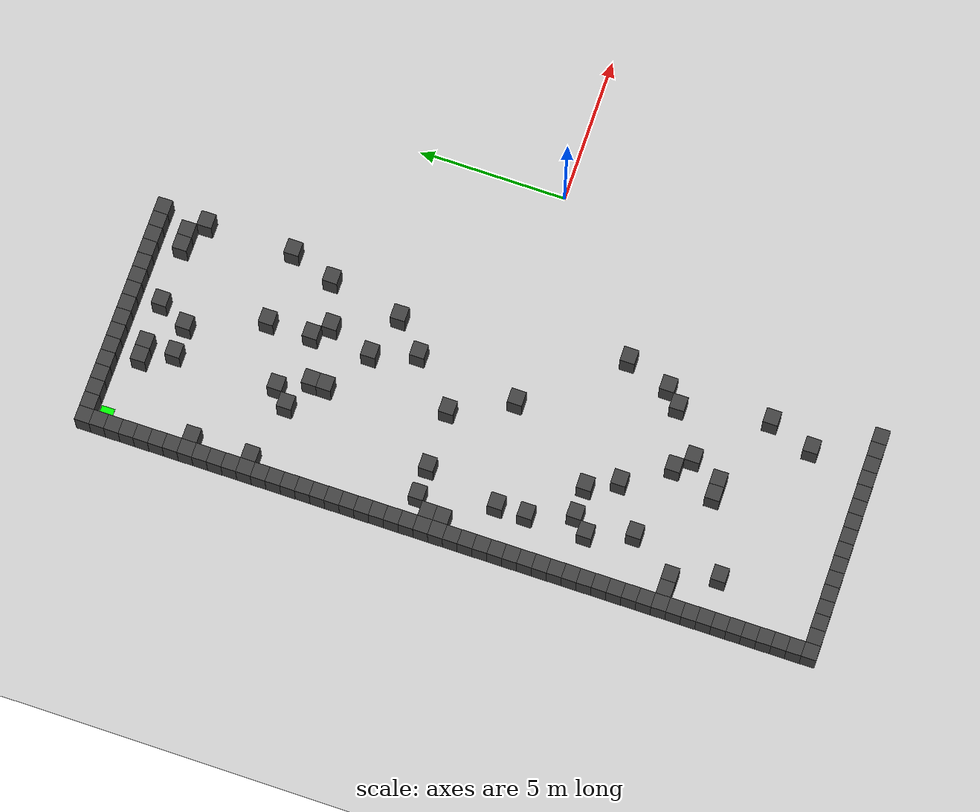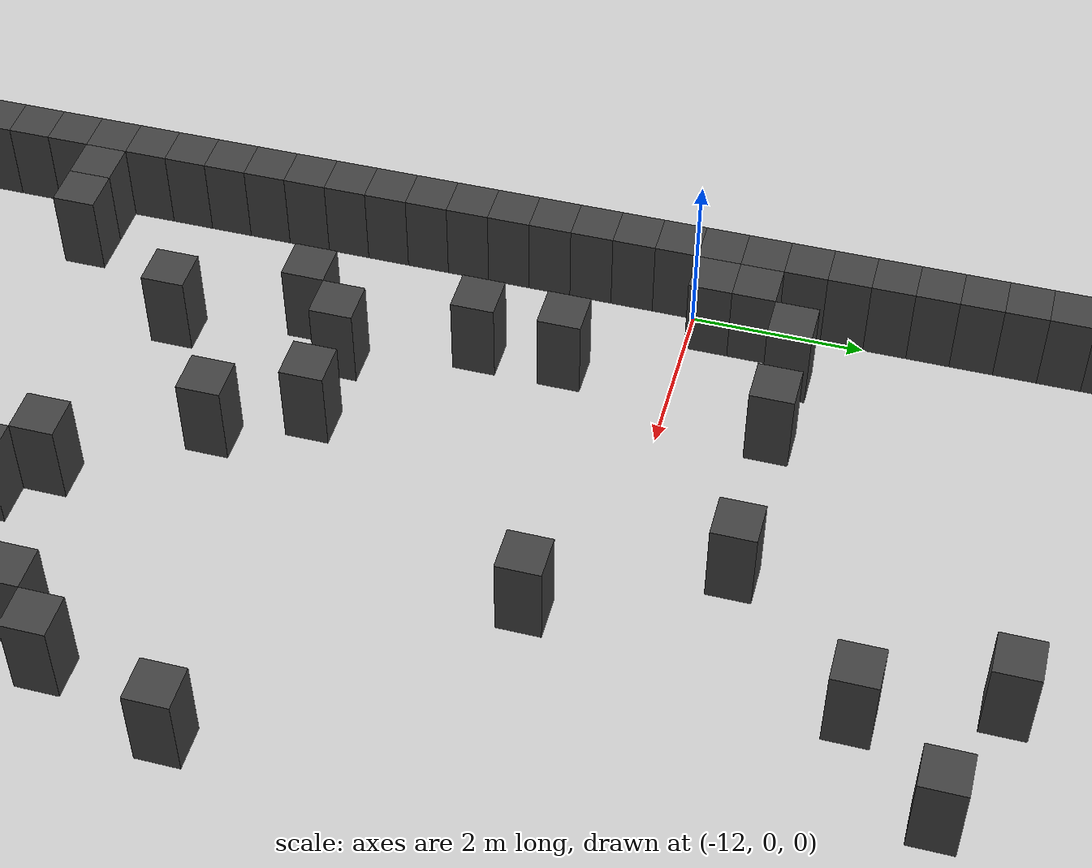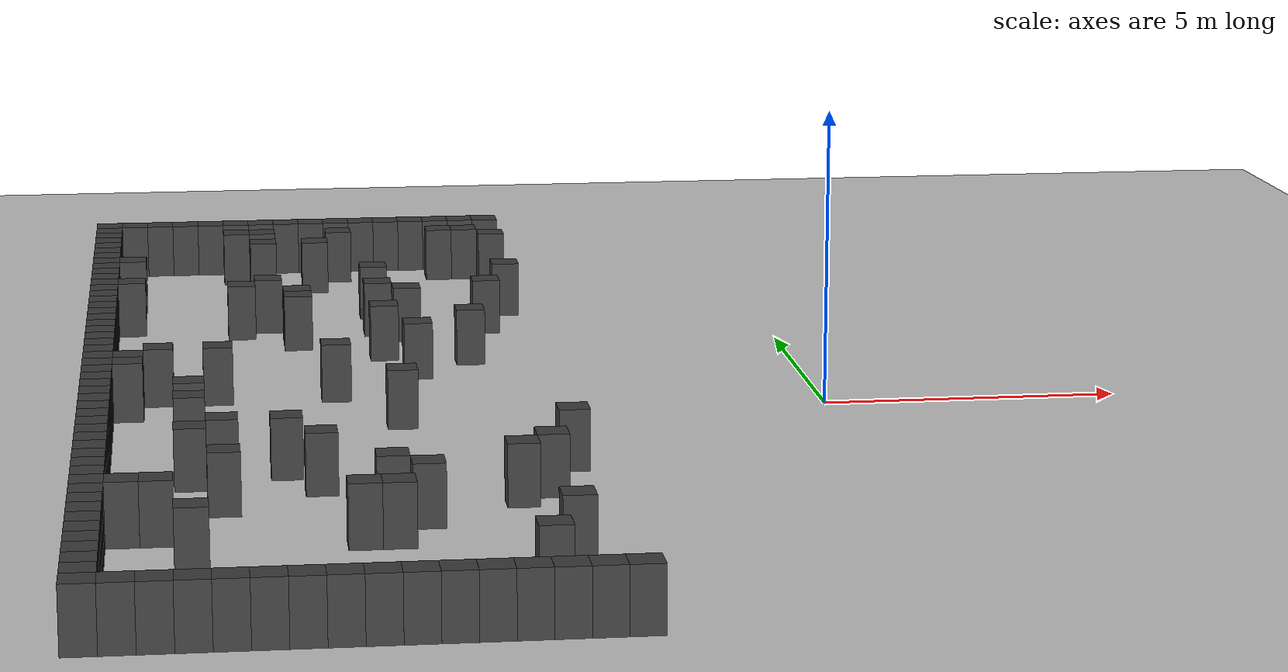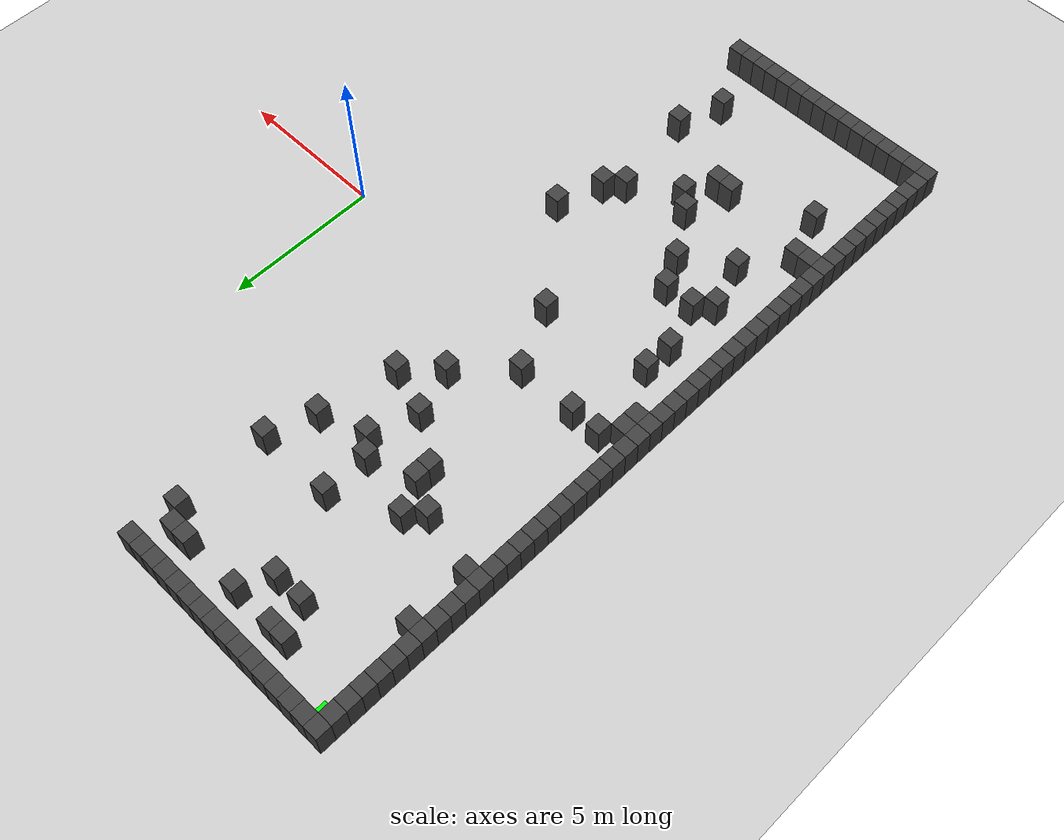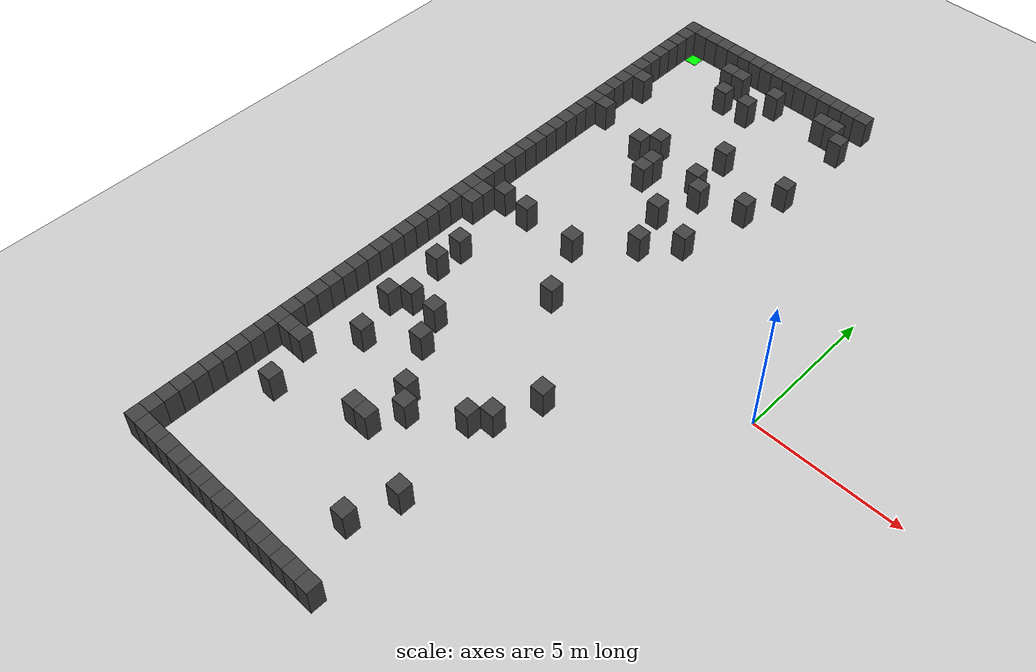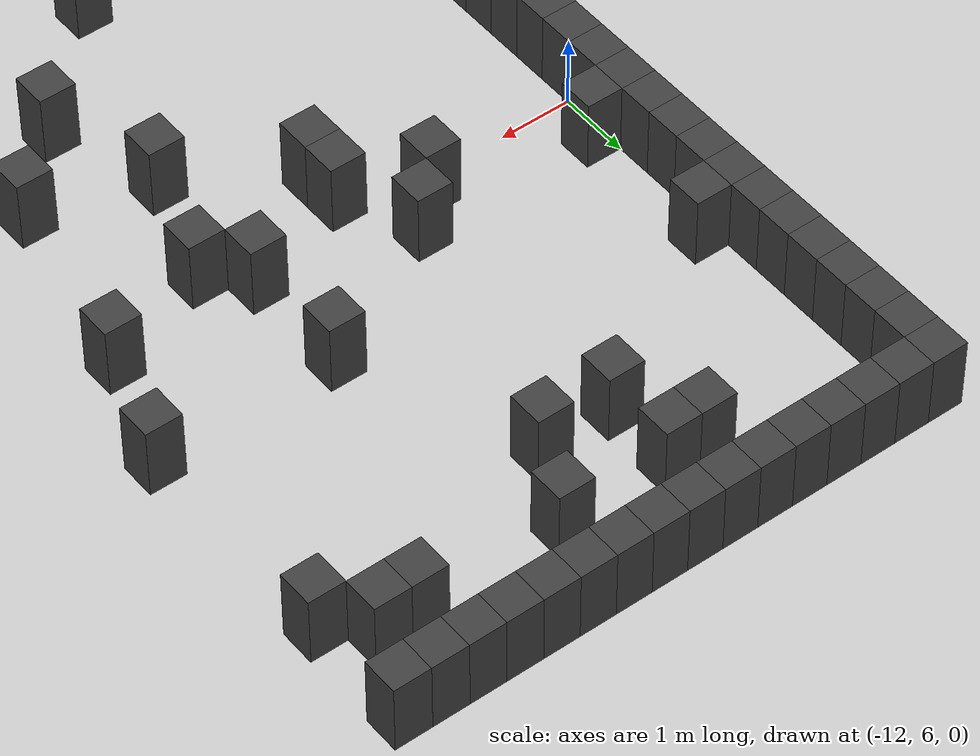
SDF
<sdf version="1.7">
 <world name="map_1352">
  <model name="ground_plane">
   <static>true</static>
   <link name="link">
    <collision name="collision">
     <geometry><plane><normal>0 0 1</normal><size>200 200</size></plane></geometry>
    </collision>
    <visual name="visual">
     <geometry><plane><normal>0 0 1</normal><size>200 200</size></plane></geometry>
     <material><ambient>0.8 0.8 0.8 1</ambient><diffuse>0.8 0.8 0.8 1</diffuse></material>
    </visual>
   </link>
  </model>
  <model name="maze_environment">
   <static>true</static>
   <link name="wall_0">
    <pose>-12.250 12.250 0.500 0 0 0</pose>
    <collision name="col"><geometry><box><size>0.5 0.5 1.0</size></box></geometry></collision>
    <visual name="vis">
     <geometry><box><size>0.5 0.5 1.0</size></box></geometry>
     <material><ambient>0.15 0.15 0.15 1</ambient><diffuse>0.25 0.25 0.25 1</diffuse></material>
    </visual>
   </link>
   <link name="wall_1">
    <pose>-11.750 12.250 0.500 0 0 0</pose>
    <collision name="col"><geometry><box><size>0.5 0.5 1.0</size></box></geometry></collision>
    <visual name="vis">
     <geometry><box><size>0.5 0.5 1.0</size></box></geometry>
     <material><ambient>0.15 0.15 0.15 1</ambient><diffuse>0.25 0.25 0.25 1</diffuse></material>
    </visual>
   </link>
   <link name="wall_2">
    <pose>-11.250 12.250 0.500 0 0 0</pose>
    <collision name="col"><geometry><box><size>0.5 0.5 1.0</size></box></geometry></collision>
    <visual name="vis">
     <geometry><box><size>0.5 0.5 1.0</size></box></geometry>
     <material><ambient>0.15 0.15 0.15 1</ambient><diffuse>0.25 0.25 0.25 1</diffuse></material>
    </visual>
   </link>
   <link name="wall_3">
    <pose>-10.750 12.250 0.500 0 0 0</pose>
    <collision name="col"><geometry><box><size>0.5 0.5 1.0</size></box></geometry></collision>
    <visual name="vis">
     <geometry><box><size>0.5 0.5 1.0</size></box></geometry>
     <material><ambient>0.15 0.15 0.15 1</ambient><diffuse>0.25 0.25 0.25 1</diffuse></material>
    </visual>
   </link>
   <link name="wall_4">
    <pose>-10.250 12.250 0.500 0 0 0</pose>
    <collision name="col"><geometry><box><size>0.5 0.5 1.0</size></box></geometry></collision>
    <visual name="vis">
     <geometry><box><size>0.5 0.5 1.0</size></box></geometry>
     <material><ambient>0.15 0.15 0.15 1</ambient><diffuse>0.25 0.25 0.25 1</diffuse></material>
    </visual>
   </link>
   <link name="wall_5">
    <pose>-9.750 12.250 0.500 0 0 0</pose>
    <collision name="col"><geometry><box><size>0.5 0.5 1.0</size></box></geometry></collision>
    <visual name="vis">
     <geometry><box><size>0.5 0.5 1.0</size></box></geometry>
     <material><ambient>0.15 0.15 0.15 1</ambient><diffuse>0.25 0.25 0.25 1</diffuse></material>
    </visual>
   </link>
   <link name="wall_6">
    <pose>-9.250 12.250 0.500 0 0 0</pose>
    <collision name="col"><geometry><box><size>0.5 0.5 1.0</size></box></geometry></collision>
    <visual name="vis">
     <geometry><box><size>0.5 0.5 1.0</size></box></geometry>
     <material><ambient>0.15 0.15 0.15 1</ambient><diffuse>0.25 0.25 0.25 1</diffuse></material>
    </visual>
   </link>
   <link name="wall_7">
    <pose>-8.750 12.250 0.500 0 0 0</pose>
    <collision name="col"><geometry><box><size>0.5 0.5 1.0</size></box></geometry></collision>
    <visual name="vis">
     <geometry><box><size>0.5 0.5 1.0</size></box></geometry>
     <material><ambient>0.15 0.15 0.15 1</ambient><diffuse>0.25 0.25 0.25 1</diffuse></material>
    </visual>
   </link>
   <link name="wall_8">
    <pose>-8.250 12.250 0.500 0 0 0</pose>
    <collision name="col"><geometry><box><size>0.5 0.5 1.0</size></box></geometry></collision>
    <visual name="vis">
     <geometry><box><size>0.5 0.5 1.0</size></box></geometry>
     <material><ambient>0.15 0.15 0.15 1</ambient><diffuse>0.25 0.25 0.25 1</diffuse></material>
    </visual>
   </link>
   <link name="wall_9">
    <pose>-7.750 12.250 0.500 0 0 0</pose>
    <collision name="col"><geometry><box><size>0.5 0.5 1.0</size></box></geometry></collision>
    <visual name="vis">
     <geometry><box><size>0.5 0.5 1.0</size></box></geometry>
     <material><ambient>0.15 0.15 0.15 1</ambient><diffuse>0.25 0.25 0.25 1</diffuse></material>
    </visual>
   </link>
   <link name="wall_10">
    <pose>-7.250 12.250 0.500 0 0 0</pose>
    <collision name="col"><geometry><box><size>0.5 0.5 1.0</size></box></geometry></collision>
    <visual name="vis">
     <geometry><box><size>0.5 0.5 1.0</size></box></geometry>
     <material><ambient>0.15 0.15 0.15 1</ambient><diffuse>0.25 0.25 0.25 1</diffuse></material>
    </visual>
   </link>
   <link name="wall_11">
    <pose>-6.750 12.250 0.500 0 0 0</pose>
    <collision name="col"><geometry><box><size>0.5 0.5 1.0</size></box></geometry></collision>
    <visual name="vis">
     <geometry><box><size>0.5 0.5 1.0</size></box></geometry>
     <material><ambient>0.15 0.15 0.15 1</ambient><diffuse>0.25 0.25 0.25 1</diffuse></material>
    </visual>
   </link>
   <link name="wall_12">
    <pose>-6.250 12.250 0.500 0 0 0</pose>
    <collision name="col"><geometry><box><size>0.5 0.5 1.0</size></box></geometry></collision>
    <visual name="vis">
     <geometry><box><size>0.5 0.5 1.0</size></box></geometry>
     <material><ambient>0.15 0.15 0.15 1</ambient><diffuse>0.25 0.25 0.25 1</diffuse></material>
    </visual>
   </link>
   <link name="wall_13">
    <pose>-5.750 12.250 0.500 0 0 0</pose>
    <collision name="col"><geometry><box><size>0.5 0.5 1.0</size></box></geometry></collision>
    <visual name="vis">
     <geometry><box><size>0.5 0.5 1.0</size></box></geometry>
     <material><ambient>0.15 0.15 0.15 1</ambient><diffuse>0.25 0.25 0.25 1</diffuse></material>
    </visual>
   </link>
   <link name="wall_14">
    <pose>-5.250 12.250 0.500 0 0 0</pose>
    <collision name="col"><geometry><box><size>0.5 0.5 1.0</size></box></geometry></collision>
    <visual name="vis">
     <geometry><box><size>0.5 0.5 1.0</size></box></geometry>
     <material><ambient>0.15 0.15 0.15 1</ambient><diffuse>0.25 0.25 0.25 1</diffuse></material>
    </visual>
   </link>
   <link name="wall_15">
    <pose>-4.750 12.250 0.500 0 0 0</pose>
    <collision name="col"><geometry><box><size>0.5 0.5 1.0</size></box></geometry></collision>
    <visual name="vis">
     <geometry><box><size>0.5 0.5 1.0</size></box></geometry>
     <material><ambient>0.15 0.15 0.15 1</ambient><diffuse>0.25 0.25 0.25 1</diffuse></material>
    </visual>
   </link>
   <link name="wall_50">
    <pose>-12.250 11.750 0.500 0 0 0</pose>
    <collision name="col"><geometry><box><size>0.5 0.5 1.0</size></box></geometry></collision>
    <visual name="vis">
     <geometry><box><size>0.5 0.5 1.0</size></box></geometry>
     <material><ambient>0.15 0.15 0.15 1</ambient><diffuse>0.25 0.25 0.25 1</diffuse></material>
    </visual>
   </link>
   <link name="wall_55">
    <pose>-12.250 11.250 0.500 0 0 0</pose>
    <collision name="col"><geometry><box><size>0.5 0.5 1.0</size></box></geometry></collision>
    <visual name="vis">
     <geometry><box><size>0.5 0.5 1.0</size></box></geometry>
     <material><ambient>0.15 0.15 0.15 1</ambient><diffuse>0.25 0.25 0.25 1</diffuse></material>
    </visual>
   </link>
   <link name="wall_56">
    <pose>-9.750 11.250 0.500 0 0 0</pose>
    <collision name="col"><geometry><box><size>0.5 0.5 1.0</size></box></geometry></collision>
    <visual name="vis">
     <geometry><box><size>0.5 0.5 1.0</size></box></geometry>
     <material><ambient>0.15 0.15 0.15 1</ambient><diffuse>0.25 0.25 0.25 1</diffuse></material>
    </visual>
   </link>
   <link name="wall_57">
    <pose>-9.250 11.250 0.500 0 0 0</pose>
    <collision name="col"><geometry><box><size>0.5 0.5 1.0</size></box></geometry></collision>
    <visual name="vis">
     <geometry><box><size>0.5 0.5 1.0</size></box></geometry>
     <material><ambient>0.15 0.15 0.15 1</ambient><diffuse>0.25 0.25 0.25 1</diffuse></material>
    </visual>
   </link>
   <link name="wall_58">
    <pose>-7.750 11.250 0.500 0 0 0</pose>
    <collision name="col"><geometry><box><size>0.5 0.5 1.0</size></box></geometry></collision>
    <visual name="vis">
     <geometry><box><size>0.5 0.5 1.0</size></box></geometry>
     <material><ambient>0.15 0.15 0.15 1</ambient><diffuse>0.25 0.25 0.25 1</diffuse></material>
    </visual>
   </link>
   <link name="wall_59">
    <pose>-5.750 11.250 0.500 0 0 0</pose>
    <collision name="col"><geometry><box><size>0.5 0.5 1.0</size></box></geometry></collision>
    <visual name="vis">
     <geometry><box><size>0.5 0.5 1.0</size></box></geometry>
     <material><ambient>0.15 0.15 0.15 1</ambient><diffuse>0.25 0.25 0.25 1</diffuse></material>
    </visual>
   </link>
   <link name="wall_60">
    <pose>-5.250 11.250 0.500 0 0 0</pose>
    <collision name="col"><geometry><box><size>0.5 0.5 1.0</size></box></geometry></collision>
    <visual name="vis">
     <geometry><box><size>0.5 0.5 1.0</size></box></geometry>
     <material><ambient>0.15 0.15 0.15 1</ambient><diffuse>0.25 0.25 0.25 1</diffuse></material>
    </visual>
   </link>
   <link name="wall_65">
    <pose>-12.250 10.750 0.500 0 0 0</pose>
    <collision name="col"><geometry><box><size>0.5 0.5 1.0</size></box></geometry></collision>
    <visual name="vis">
     <geometry><box><size>0.5 0.5 1.0</size></box></geometry>
     <material><ambient>0.15 0.15 0.15 1</ambient><diffuse>0.25 0.25 0.25 1</diffuse></material>
    </visual>
   </link>
   <link name="wall_66">
    <pose>-4.750 10.750 0.500 0 0 0</pose>
    <collision name="col"><geometry><box><size>0.5 0.5 1.0</size></box></geometry></collision>
    <visual name="vis">
     <geometry><box><size>0.5 0.5 1.0</size></box></geometry>
     <material><ambient>0.15 0.15 0.15 1</ambient><diffuse>0.25 0.25 0.25 1</diffuse></material>
    </visual>
   </link>
   <link name="wall_71">
    <pose>-12.250 10.250 0.500 0 0 0</pose>
    <collision name="col"><geometry><box><size>0.5 0.5 1.0</size></box></geometry></collision>
    <visual name="vis">
     <geometry><box><size>0.5 0.5 1.0</size></box></geometry>
     <material><ambient>0.15 0.15 0.15 1</ambient><diffuse>0.25 0.25 0.25 1</diffuse></material>
    </visual>
   </link>
   <link name="wall_72">
    <pose>-9.250 10.250 0.500 0 0 0</pose>
    <collision name="col"><geometry><box><size>0.5 0.5 1.0</size></box></geometry></collision>
    <visual name="vis">
     <geometry><box><size>0.5 0.5 1.0</size></box></geometry>
     <material><ambient>0.15 0.15 0.15 1</ambient><diffuse>0.25 0.25 0.25 1</diffuse></material>
    </visual>
   </link>
   <link name="wall_73">
    <pose>-8.250 10.250 0.500 0 0 0</pose>
    <collision name="col"><geometry><box><size>0.5 0.5 1.0</size></box></geometry></collision>
    <visual name="vis">
     <geometry><box><size>0.5 0.5 1.0</size></box></geometry>
     <material><ambient>0.15 0.15 0.15 1</ambient><diffuse>0.25 0.25 0.25 1</diffuse></material>
    </visual>
   </link>
   <link name="wall_78">
    <pose>-12.250 9.750 0.500 0 0 0</pose>
    <collision name="col"><geometry><box><size>0.5 0.5 1.0</size></box></geometry></collision>
    <visual name="vis">
     <geometry><box><size>0.5 0.5 1.0</size></box></geometry>
     <material><ambient>0.15 0.15 0.15 1</ambient><diffuse>0.25 0.25 0.25 1</diffuse></material>
    </visual>
   </link>
   <link name="wall_80">
    <pose>-12.250 9.250 0.500 0 0 0</pose>
    <collision name="col"><geometry><box><size>0.5 0.5 1.0</size></box></geometry></collision>
    <visual name="vis">
     <geometry><box><size>0.5 0.5 1.0</size></box></geometry>
     <material><ambient>0.15 0.15 0.15 1</ambient><diffuse>0.25 0.25 0.25 1</diffuse></material>
    </visual>
   </link>
   <link name="wall_87">
    <pose>-12.250 8.750 0.500 0 0 0</pose>
    <collision name="col"><geometry><box><size>0.5 0.5 1.0</size></box></geometry></collision>
    <visual name="vis">
     <geometry><box><size>0.5 0.5 1.0</size></box></geometry>
     <material><ambient>0.15 0.15 0.15 1</ambient><diffuse>0.25 0.25 0.25 1</diffuse></material>
    </visual>
   </link>
   <link name="wall_88">
    <pose>-11.750 8.750 0.500 0 0 0</pose>
    <collision name="col"><geometry><box><size>0.5 0.5 1.0</size></box></geometry></collision>
    <visual name="vis">
     <geometry><box><size>0.5 0.5 1.0</size></box></geometry>
     <material><ambient>0.15 0.15 0.15 1</ambient><diffuse>0.25 0.25 0.25 1</diffuse></material>
    </visual>
   </link>
   <link name="wall_91">
    <pose>-12.250 8.250 0.500 0 0 0</pose>
    <collision name="col"><geometry><box><size>0.5 0.5 1.0</size></box></geometry></collision>
    <visual name="vis">
     <geometry><box><size>0.5 0.5 1.0</size></box></geometry>
     <material><ambient>0.15 0.15 0.15 1</ambient><diffuse>0.25 0.25 0.25 1</diffuse></material>
    </visual>
   </link>
   <link name="wall_94">
    <pose>-12.250 7.750 0.500 0 0 0</pose>
    <collision name="col"><geometry><box><size>0.5 0.5 1.0</size></box></geometry></collision>
    <visual name="vis">
     <geometry><box><size>0.5 0.5 1.0</size></box></geometry>
     <material><ambient>0.15 0.15 0.15 1</ambient><diffuse>0.25 0.25 0.25 1</diffuse></material>
    </visual>
   </link>
   <link name="wall_95">
    <pose>-7.250 7.750 0.500 0 0 0</pose>
    <collision name="col"><geometry><box><size>0.5 0.5 1.0</size></box></geometry></collision>
    <visual name="vis">
     <geometry><box><size>0.5 0.5 1.0</size></box></geometry>
     <material><ambient>0.15 0.15 0.15 1</ambient><diffuse>0.25 0.25 0.25 1</diffuse></material>
    </visual>
   </link>
   <link name="wall_96">
    <pose>-4.750 7.750 0.500 0 0 0</pose>
    <collision name="col"><geometry><box><size>0.5 0.5 1.0</size></box></geometry></collision>
    <visual name="vis">
     <geometry><box><size>0.5 0.5 1.0</size></box></geometry>
     <material><ambient>0.15 0.15 0.15 1</ambient><diffuse>0.25 0.25 0.25 1</diffuse></material>
    </visual>
   </link>
   <link name="wall_101">
    <pose>-12.250 7.250 0.500 0 0 0</pose>
    <collision name="col"><geometry><box><size>0.5 0.5 1.0</size></box></geometry></collision>
    <visual name="vis">
     <geometry><box><size>0.5 0.5 1.0</size></box></geometry>
     <material><ambient>0.15 0.15 0.15 1</ambient><diffuse>0.25 0.25 0.25 1</diffuse></material>
    </visual>
   </link>
   <link name="wall_106">
    <pose>-12.250 6.750 0.500 0 0 0</pose>
    <collision name="col"><geometry><box><size>0.5 0.5 1.0</size></box></geometry></collision>
    <visual name="vis">
     <geometry><box><size>0.5 0.5 1.0</size></box></geometry>
     <material><ambient>0.15 0.15 0.15 1</ambient><diffuse>0.25 0.25 0.25 1</diffuse></material>
    </visual>
   </link>
   <link name="wall_107">
    <pose>-11.750 6.750 0.500 0 0 0</pose>
    <collision name="col"><geometry><box><size>0.5 0.5 1.0</size></box></geometry></collision>
    <visual name="vis">
     <geometry><box><size>0.5 0.5 1.0</size></box></geometry>
     <material><ambient>0.15 0.15 0.15 1</ambient><diffuse>0.25 0.25 0.25 1</diffuse></material>
    </visual>
   </link>
   <link name="wall_108">
    <pose>-9.250 6.750 0.500 0 0 0</pose>
    <collision name="col"><geometry><box><size>0.5 0.5 1.0</size></box></geometry></collision>
    <visual name="vis">
     <geometry><box><size>0.5 0.5 1.0</size></box></geometry>
     <material><ambient>0.15 0.15 0.15 1</ambient><diffuse>0.25 0.25 0.25 1</diffuse></material>
    </visual>
   </link>
   <link name="wall_113">
    <pose>-12.250 6.250 0.500 0 0 0</pose>
    <collision name="col"><geometry><box><size>0.5 0.5 1.0</size></box></geometry></collision>
    <visual name="vis">
     <geometry><box><size>0.5 0.5 1.0</size></box></geometry>
     <material><ambient>0.15 0.15 0.15 1</ambient><diffuse>0.25 0.25 0.25 1</diffuse></material>
    </visual>
   </link>
   <link name="wall_114">
    <pose>-9.750 6.250 0.500 0 0 0</pose>
    <collision name="col"><geometry><box><size>0.5 0.5 1.0</size></box></geometry></collision>
    <visual name="vis">
     <geometry><box><size>0.5 0.5 1.0</size></box></geometry>
     <material><ambient>0.15 0.15 0.15 1</ambient><diffuse>0.25 0.25 0.25 1</diffuse></material>
    </visual>
   </link>
   <link name="wall_115">
    <pose>-7.250 6.250 0.500 0 0 0</pose>
    <collision name="col"><geometry><box><size>0.5 0.5 1.0</size></box></geometry></collision>
    <visual name="vis">
     <geometry><box><size>0.5 0.5 1.0</size></box></geometry>
     <material><ambient>0.15 0.15 0.15 1</ambient><diffuse>0.25 0.25 0.25 1</diffuse></material>
    </visual>
   </link>
   <link name="wall_116">
    <pose>-5.250 6.250 0.500 0 0 0</pose>
    <collision name="col"><geometry><box><size>0.5 0.5 1.0</size></box></geometry></collision>
    <visual name="vis">
     <geometry><box><size>0.5 0.5 1.0</size></box></geometry>
     <material><ambient>0.15 0.15 0.15 1</ambient><diffuse>0.25 0.25 0.25 1</diffuse></material>
    </visual>
   </link>
   <link name="wall_118">
    <pose>-12.250 5.750 0.500 0 0 0</pose>
    <collision name="col"><geometry><box><size>0.5 0.5 1.0</size></box></geometry></collision>
    <visual name="vis">
     <geometry><box><size>0.5 0.5 1.0</size></box></geometry>
     <material><ambient>0.15 0.15 0.15 1</ambient><diffuse>0.25 0.25 0.25 1</diffuse></material>
    </visual>
   </link>
   <link name="wall_119">
    <pose>-8.750 5.750 0.500 0 0 0</pose>
    <collision name="col"><geometry><box><size>0.5 0.5 1.0</size></box></geometry></collision>
    <visual name="vis">
     <geometry><box><size>0.5 0.5 1.0</size></box></geometry>
     <material><ambient>0.15 0.15 0.15 1</ambient><diffuse>0.25 0.25 0.25 1</diffuse></material>
    </visual>
   </link>
   <link name="wall_120">
    <pose>-6.750 5.750 0.500 0 0 0</pose>
    <collision name="col"><geometry><box><size>0.5 0.5 1.0</size></box></geometry></collision>
    <visual name="vis">
     <geometry><box><size>0.5 0.5 1.0</size></box></geometry>
     <material><ambient>0.15 0.15 0.15 1</ambient><diffuse>0.25 0.25 0.25 1</diffuse></material>
    </visual>
   </link>
   <link name="wall_125">
    <pose>-12.250 5.250 0.500 0 0 0</pose>
    <collision name="col"><geometry><box><size>0.5 0.5 1.0</size></box></geometry></collision>
    <visual name="vis">
     <geometry><box><size>0.5 0.5 1.0</size></box></geometry>
     <material><ambient>0.15 0.15 0.15 1</ambient><diffuse>0.25 0.25 0.25 1</diffuse></material>
    </visual>
   </link>
   <link name="wall_126">
    <pose>-8.750 5.250 0.500 0 0 0</pose>
    <collision name="col"><geometry><box><size>0.5 0.5 1.0</size></box></geometry></collision>
    <visual name="vis">
     <geometry><box><size>0.5 0.5 1.0</size></box></geometry>
     <material><ambient>0.15 0.15 0.15 1</ambient><diffuse>0.25 0.25 0.25 1</diffuse></material>
    </visual>
   </link>
   <link name="wall_130">
    <pose>-12.250 4.750 0.500 0 0 0</pose>
    <collision name="col"><geometry><box><size>0.5 0.5 1.0</size></box></geometry></collision>
    <visual name="vis">
     <geometry><box><size>0.5 0.5 1.0</size></box></geometry>
     <material><ambient>0.15 0.15 0.15 1</ambient><diffuse>0.25 0.25 0.25 1</diffuse></material>
    </visual>
   </link>
   <link name="wall_135">
    <pose>-12.250 4.250 0.500 0 0 0</pose>
    <collision name="col"><geometry><box><size>0.5 0.5 1.0</size></box></geometry></collision>
    <visual name="vis">
     <geometry><box><size>0.5 0.5 1.0</size></box></geometry>
     <material><ambient>0.15 0.15 0.15 1</ambient><diffuse>0.25 0.25 0.25 1</diffuse></material>
    </visual>
   </link>
   <link name="wall_136">
    <pose>-7.250 4.250 0.500 0 0 0</pose>
    <collision name="col"><geometry><box><size>0.5 0.5 1.0</size></box></geometry></collision>
    <visual name="vis">
     <geometry><box><size>0.5 0.5 1.0</size></box></geometry>
     <material><ambient>0.15 0.15 0.15 1</ambient><diffuse>0.25 0.25 0.25 1</diffuse></material>
    </visual>
   </link>
   <link name="wall_140">
    <pose>-12.250 3.750 0.500 0 0 0</pose>
    <collision name="col"><geometry><box><size>0.5 0.5 1.0</size></box></geometry></collision>
    <visual name="vis">
     <geometry><box><size>0.5 0.5 1.0</size></box></geometry>
     <material><ambient>0.15 0.15 0.15 1</ambient><diffuse>0.25 0.25 0.25 1</diffuse></material>
    </visual>
   </link>
   <link name="wall_141">
    <pose>-5.750 3.750 0.500 0 0 0</pose>
    <collision name="col"><geometry><box><size>0.5 0.5 1.0</size></box></geometry></collision>
    <visual name="vis">
     <geometry><box><size>0.5 0.5 1.0</size></box></geometry>
     <material><ambient>0.15 0.15 0.15 1</ambient><diffuse>0.25 0.25 0.25 1</diffuse></material>
    </visual>
   </link>
   <link name="wall_147">
    <pose>-12.250 3.250 0.500 0 0 0</pose>
    <collision name="col"><geometry><box><size>0.5 0.5 1.0</size></box></geometry></collision>
    <visual name="vis">
     <geometry><box><size>0.5 0.5 1.0</size></box></geometry>
     <material><ambient>0.15 0.15 0.15 1</ambient><diffuse>0.25 0.25 0.25 1</diffuse></material>
    </visual>
   </link>
   <link name="wall_154">
    <pose>-12.250 2.750 0.500 0 0 0</pose>
    <collision name="col"><geometry><box><size>0.5 0.5 1.0</size></box></geometry></collision>
    <visual name="vis">
     <geometry><box><size>0.5 0.5 1.0</size></box></geometry>
     <material><ambient>0.15 0.15 0.15 1</ambient><diffuse>0.25 0.25 0.25 1</diffuse></material>
    </visual>
   </link>
   <link name="wall_155">
    <pose>-6.750 2.750 0.500 0 0 0</pose>
    <collision name="col"><geometry><box><size>0.5 0.5 1.0</size></box></geometry></collision>
    <visual name="vis">
     <geometry><box><size>0.5 0.5 1.0</size></box></geometry>
     <material><ambient>0.15 0.15 0.15 1</ambient><diffuse>0.25 0.25 0.25 1</diffuse></material>
    </visual>
   </link>
   <link name="wall_159">
    <pose>-12.250 2.250 0.500 0 0 0</pose>
    <collision name="col"><geometry><box><size>0.5 0.5 1.0</size></box></geometry></collision>
    <visual name="vis">
     <geometry><box><size>0.5 0.5 1.0</size></box></geometry>
     <material><ambient>0.15 0.15 0.15 1</ambient><diffuse>0.25 0.25 0.25 1</diffuse></material>
    </visual>
   </link>
   <link name="wall_162">
    <pose>-12.250 1.750 0.500 0 0 0</pose>
    <collision name="col"><geometry><box><size>0.5 0.5 1.0</size></box></geometry></collision>
    <visual name="vis">
     <geometry><box><size>0.5 0.5 1.0</size></box></geometry>
     <material><ambient>0.15 0.15 0.15 1</ambient><diffuse>0.25 0.25 0.25 1</diffuse></material>
    </visual>
   </link>
   <link name="wall_168">
    <pose>-12.250 1.250 0.500 0 0 0</pose>
    <collision name="col"><geometry><box><size>0.5 0.5 1.0</size></box></geometry></collision>
    <visual name="vis">
     <geometry><box><size>0.5 0.5 1.0</size></box></geometry>
     <material><ambient>0.15 0.15 0.15 1</ambient><diffuse>0.25 0.25 0.25 1</diffuse></material>
    </visual>
   </link>
   <link name="wall_169">
    <pose>-11.250 1.250 0.500 0 0 0</pose>
    <collision name="col"><geometry><box><size>0.5 0.5 1.0</size></box></geometry></collision>
    <visual name="vis">
     <geometry><box><size>0.5 0.5 1.0</size></box></geometry>
     <material><ambient>0.15 0.15 0.15 1</ambient><diffuse>0.25 0.25 0.25 1</diffuse></material>
    </visual>
   </link>
   <link name="wall_170">
    <pose>-10.250 1.250 0.500 0 0 0</pose>
    <collision name="col"><geometry><box><size>0.5 0.5 1.0</size></box></geometry></collision>
    <visual name="vis">
     <geometry><box><size>0.5 0.5 1.0</size></box></geometry>
     <material><ambient>0.15 0.15 0.15 1</ambient><diffuse>0.25 0.25 0.25 1</diffuse></material>
    </visual>
   </link>
   <link name="wall_171">
    <pose>-8.250 1.250 0.500 0 0 0</pose>
    <collision name="col"><geometry><box><size>0.5 0.5 1.0</size></box></geometry></collision>
    <visual name="vis">
     <geometry><box><size>0.5 0.5 1.0</size></box></geometry>
     <material><ambient>0.15 0.15 0.15 1</ambient><diffuse>0.25 0.25 0.25 1</diffuse></material>
    </visual>
   </link>
   <link name="wall_179">
    <pose>-12.250 0.750 0.500 0 0 0</pose>
    <collision name="col"><geometry><box><size>0.5 0.5 1.0</size></box></geometry></collision>
    <visual name="vis">
     <geometry><box><size>0.5 0.5 1.0</size></box></geometry>
     <material><ambient>0.15 0.15 0.15 1</ambient><diffuse>0.25 0.25 0.25 1</diffuse></material>
    </visual>
   </link>
   <link name="wall_180">
    <pose>-11.750 0.750 0.500 0 0 0</pose>
    <collision name="col"><geometry><box><size>0.5 0.5 1.0</size></box></geometry></collision>
    <visual name="vis">
     <geometry><box><size>0.5 0.5 1.0</size></box></geometry>
     <material><ambient>0.15 0.15 0.15 1</ambient><diffuse>0.25 0.25 0.25 1</diffuse></material>
    </visual>
   </link>
   <link name="wall_185">
    <pose>-12.250 0.250 0.500 0 0 0</pose>
    <collision name="col"><geometry><box><size>0.5 0.5 1.0</size></box></geometry></collision>
    <visual name="vis">
     <geometry><box><size>0.5 0.5 1.0</size></box></geometry>
     <material><ambient>0.15 0.15 0.15 1</ambient><diffuse>0.25 0.25 0.25 1</diffuse></material>
    </visual>
   </link>
   <link name="wall_186">
    <pose>-11.750 0.250 0.500 0 0 0</pose>
    <collision name="col"><geometry><box><size>0.5 0.5 1.0</size></box></geometry></collision>
    <visual name="vis">
     <geometry><box><size>0.5 0.5 1.0</size></box></geometry>
     <material><ambient>0.15 0.15 0.15 1</ambient><diffuse>0.25 0.25 0.25 1</diffuse></material>
    </visual>
   </link>
   <link name="wall_188">
    <pose>-12.250 -0.250 0.500 0 0 0</pose>
    <collision name="col"><geometry><box><size>0.5 0.5 1.0</size></box></geometry></collision>
    <visual name="vis">
     <geometry><box><size>0.5 0.5 1.0</size></box></geometry>
     <material><ambient>0.15 0.15 0.15 1</ambient><diffuse>0.25 0.25 0.25 1</diffuse></material>
    </visual>
   </link>
   <link name="wall_194">
    <pose>-12.250 -0.750 0.500 0 0 0</pose>
    <collision name="col"><geometry><box><size>0.5 0.5 1.0</size></box></geometry></collision>
    <visual name="vis">
     <geometry><box><size>0.5 0.5 1.0</size></box></geometry>
     <material><ambient>0.15 0.15 0.15 1</ambient><diffuse>0.25 0.25 0.25 1</diffuse></material>
    </visual>
   </link>
   <link name="wall_195">
    <pose>-7.250 -0.750 0.500 0 0 0</pose>
    <collision name="col"><geometry><box><size>0.5 0.5 1.0</size></box></geometry></collision>
    <visual name="vis">
     <geometry><box><size>0.5 0.5 1.0</size></box></geometry>
     <material><ambient>0.15 0.15 0.15 1</ambient><diffuse>0.25 0.25 0.25 1</diffuse></material>
    </visual>
   </link>
   <link name="wall_200">
    <pose>-12.250 -1.250 0.500 0 0 0</pose>
    <collision name="col"><geometry><box><size>0.5 0.5 1.0</size></box></geometry></collision>
    <visual name="vis">
     <geometry><box><size>0.5 0.5 1.0</size></box></geometry>
     <material><ambient>0.15 0.15 0.15 1</ambient><diffuse>0.25 0.25 0.25 1</diffuse></material>
    </visual>
   </link>
   <link name="wall_201">
    <pose>-10.750 -1.250 0.500 0 0 0</pose>
    <collision name="col"><geometry><box><size>0.5 0.5 1.0</size></box></geometry></collision>
    <visual name="vis">
     <geometry><box><size>0.5 0.5 1.0</size></box></geometry>
     <material><ambient>0.15 0.15 0.15 1</ambient><diffuse>0.25 0.25 0.25 1</diffuse></material>
    </visual>
   </link>
   <link name="wall_207">
    <pose>-12.250 -1.750 0.500 0 0 0</pose>
    <collision name="col"><geometry><box><size>0.5 0.5 1.0</size></box></geometry></collision>
    <visual name="vis">
     <geometry><box><size>0.5 0.5 1.0</size></box></geometry>
     <material><ambient>0.15 0.15 0.15 1</ambient><diffuse>0.25 0.25 0.25 1</diffuse></material>
    </visual>
   </link>
   <link name="wall_210">
    <pose>-12.250 -2.250 0.500 0 0 0</pose>
    <collision name="col"><geometry><box><size>0.5 0.5 1.0</size></box></geometry></collision>
    <visual name="vis">
     <geometry><box><size>0.5 0.5 1.0</size></box></geometry>
     <material><ambient>0.15 0.15 0.15 1</ambient><diffuse>0.25 0.25 0.25 1</diffuse></material>
    </visual>
   </link>
   <link name="wall_211">
    <pose>-10.750 -2.250 0.500 0 0 0</pose>
    <collision name="col"><geometry><box><size>0.5 0.5 1.0</size></box></geometry></collision>
    <visual name="vis">
     <geometry><box><size>0.5 0.5 1.0</size></box></geometry>
     <material><ambient>0.15 0.15 0.15 1</ambient><diffuse>0.25 0.25 0.25 1</diffuse></material>
    </visual>
   </link>
   <link name="wall_216">
    <pose>-12.250 -2.750 0.500 0 0 0</pose>
    <collision name="col"><geometry><box><size>0.5 0.5 1.0</size></box></geometry></collision>
    <visual name="vis">
     <geometry><box><size>0.5 0.5 1.0</size></box></geometry>
     <material><ambient>0.15 0.15 0.15 1</ambient><diffuse>0.25 0.25 0.25 1</diffuse></material>
    </visual>
   </link>
   <link name="wall_219">
    <pose>-12.250 -3.250 0.500 0 0 0</pose>
    <collision name="col"><geometry><box><size>0.5 0.5 1.0</size></box></geometry></collision>
    <visual name="vis">
     <geometry><box><size>0.5 0.5 1.0</size></box></geometry>
     <material><ambient>0.15 0.15 0.15 1</ambient><diffuse>0.25 0.25 0.25 1</diffuse></material>
    </visual>
   </link>
   <link name="wall_225">
    <pose>-12.250 -3.750 0.500 0 0 0</pose>
    <collision name="col"><geometry><box><size>0.5 0.5 1.0</size></box></geometry></collision>
    <visual name="vis">
     <geometry><box><size>0.5 0.5 1.0</size></box></geometry>
     <material><ambient>0.15 0.15 0.15 1</ambient><diffuse>0.25 0.25 0.25 1</diffuse></material>
    </visual>
   </link>
   <link name="wall_226">
    <pose>-10.250 -3.750 0.500 0 0 0</pose>
    <collision name="col"><geometry><box><size>0.5 0.5 1.0</size></box></geometry></collision>
    <visual name="vis">
     <geometry><box><size>0.5 0.5 1.0</size></box></geometry>
     <material><ambient>0.15 0.15 0.15 1</ambient><diffuse>0.25 0.25 0.25 1</diffuse></material>
    </visual>
   </link>
   <link name="wall_227">
    <pose>-9.250 -3.750 0.500 0 0 0</pose>
    <collision name="col"><geometry><box><size>0.5 0.5 1.0</size></box></geometry></collision>
    <visual name="vis">
     <geometry><box><size>0.5 0.5 1.0</size></box></geometry>
     <material><ambient>0.15 0.15 0.15 1</ambient><diffuse>0.25 0.25 0.25 1</diffuse></material>
    </visual>
   </link>
   <link name="wall_228">
    <pose>-4.750 -3.750 0.500 0 0 0</pose>
    <collision name="col"><geometry><box><size>0.5 0.5 1.0</size></box></geometry></collision>
    <visual name="vis">
     <geometry><box><size>0.5 0.5 1.0</size></box></geometry>
     <material><ambient>0.15 0.15 0.15 1</ambient><diffuse>0.25 0.25 0.25 1</diffuse></material>
    </visual>
   </link>
   <link name="wall_233">
    <pose>-12.250 -4.250 0.500 0 0 0</pose>
    <collision name="col"><geometry><box><size>0.5 0.5 1.0</size></box></geometry></collision>
    <visual name="vis">
     <geometry><box><size>0.5 0.5 1.0</size></box></geometry>
     <material><ambient>0.15 0.15 0.15 1</ambient><diffuse>0.25 0.25 0.25 1</diffuse></material>
    </visual>
   </link>
   <link name="wall_234">
    <pose>-10.750 -4.250 0.500 0 0 0</pose>
    <collision name="col"><geometry><box><size>0.5 0.5 1.0</size></box></geometry></collision>
    <visual name="vis">
     <geometry><box><size>0.5 0.5 1.0</size></box></geometry>
     <material><ambient>0.15 0.15 0.15 1</ambient><diffuse>0.25 0.25 0.25 1</diffuse></material>
    </visual>
   </link>
   <link name="wall_242">
    <pose>-12.250 -4.750 0.500 0 0 0</pose>
    <collision name="col"><geometry><box><size>0.5 0.5 1.0</size></box></geometry></collision>
    <visual name="vis">
     <geometry><box><size>0.5 0.5 1.0</size></box></geometry>
     <material><ambient>0.15 0.15 0.15 1</ambient><diffuse>0.25 0.25 0.25 1</diffuse></material>
    </visual>
   </link>
   <link name="wall_243">
    <pose>-8.750 -4.750 0.500 0 0 0</pose>
    <collision name="col"><geometry><box><size>0.5 0.5 1.0</size></box></geometry></collision>
    <visual name="vis">
     <geometry><box><size>0.5 0.5 1.0</size></box></geometry>
     <material><ambient>0.15 0.15 0.15 1</ambient><diffuse>0.25 0.25 0.25 1</diffuse></material>
    </visual>
   </link>
   <link name="wall_249">
    <pose>-12.250 -5.250 0.500 0 0 0</pose>
    <collision name="col"><geometry><box><size>0.5 0.5 1.0</size></box></geometry></collision>
    <visual name="vis">
     <geometry><box><size>0.5 0.5 1.0</size></box></geometry>
     <material><ambient>0.15 0.15 0.15 1</ambient><diffuse>0.25 0.25 0.25 1</diffuse></material>
    </visual>
   </link>
   <link name="wall_250">
    <pose>-5.250 -5.250 0.500 0 0 0</pose>
    <collision name="col"><geometry><box><size>0.5 0.5 1.0</size></box></geometry></collision>
    <visual name="vis">
     <geometry><box><size>0.5 0.5 1.0</size></box></geometry>
     <material><ambient>0.15 0.15 0.15 1</ambient><diffuse>0.25 0.25 0.25 1</diffuse></material>
    </visual>
   </link>
   <link name="wall_254">
    <pose>-12.250 -5.750 0.500 0 0 0</pose>
    <collision name="col"><geometry><box><size>0.5 0.5 1.0</size></box></geometry></collision>
    <visual name="vis">
     <geometry><box><size>0.5 0.5 1.0</size></box></geometry>
     <material><ambient>0.15 0.15 0.15 1</ambient><diffuse>0.25 0.25 0.25 1</diffuse></material>
    </visual>
   </link>
   <link name="wall_255">
    <pose>-10.250 -5.750 0.500 0 0 0</pose>
    <collision name="col"><geometry><box><size>0.5 0.5 1.0</size></box></geometry></collision>
    <visual name="vis">
     <geometry><box><size>0.5 0.5 1.0</size></box></geometry>
     <material><ambient>0.15 0.15 0.15 1</ambient><diffuse>0.25 0.25 0.25 1</diffuse></material>
    </visual>
   </link>
   <link name="wall_256">
    <pose>-5.750 -5.750 0.500 0 0 0</pose>
    <collision name="col"><geometry><box><size>0.5 0.5 1.0</size></box></geometry></collision>
    <visual name="vis">
     <geometry><box><size>0.5 0.5 1.0</size></box></geometry>
     <material><ambient>0.15 0.15 0.15 1</ambient><diffuse>0.25 0.25 0.25 1</diffuse></material>
    </visual>
   </link>
   <link name="wall_260">
    <pose>-12.250 -6.250 0.500 0 0 0</pose>
    <collision name="col"><geometry><box><size>0.5 0.5 1.0</size></box></geometry></collision>
    <visual name="vis">
     <geometry><box><size>0.5 0.5 1.0</size></box></geometry>
     <material><ambient>0.15 0.15 0.15 1</ambient><diffuse>0.25 0.25 0.25 1</diffuse></material>
    </visual>
   </link>
   <link name="wall_261">
    <pose>-7.750 -6.250 0.500 0 0 0</pose>
    <collision name="col"><geometry><box><size>0.5 0.5 1.0</size></box></geometry></collision>
    <visual name="vis">
     <geometry><box><size>0.5 0.5 1.0</size></box></geometry>
     <material><ambient>0.15 0.15 0.15 1</ambient><diffuse>0.25 0.25 0.25 1</diffuse></material>
    </visual>
   </link>
   <link name="wall_269">
    <pose>-12.250 -6.750 0.500 0 0 0</pose>
    <collision name="col"><geometry><box><size>0.5 0.5 1.0</size></box></geometry></collision>
    <visual name="vis">
     <geometry><box><size>0.5 0.5 1.0</size></box></geometry>
     <material><ambient>0.15 0.15 0.15 1</ambient><diffuse>0.25 0.25 0.25 1</diffuse></material>
    </visual>
   </link>
   <link name="wall_270">
    <pose>-7.250 -6.750 0.500 0 0 0</pose>
    <collision name="col"><geometry><box><size>0.5 0.5 1.0</size></box></geometry></collision>
    <visual name="vis">
     <geometry><box><size>0.5 0.5 1.0</size></box></geometry>
     <material><ambient>0.15 0.15 0.15 1</ambient><diffuse>0.25 0.25 0.25 1</diffuse></material>
    </visual>
   </link>
   <link name="wall_275">
    <pose>-12.250 -7.250 0.500 0 0 0</pose>
    <collision name="col"><geometry><box><size>0.5 0.5 1.0</size></box></geometry></collision>
    <visual name="vis">
     <geometry><box><size>0.5 0.5 1.0</size></box></geometry>
     <material><ambient>0.15 0.15 0.15 1</ambient><diffuse>0.25 0.25 0.25 1</diffuse></material>
    </visual>
   </link>
   <link name="wall_276">
    <pose>-11.750 -7.250 0.500 0 0 0</pose>
    <collision name="col"><geometry><box><size>0.5 0.5 1.0</size></box></geometry></collision>
    <visual name="vis">
     <geometry><box><size>0.5 0.5 1.0</size></box></geometry>
     <material><ambient>0.15 0.15 0.15 1</ambient><diffuse>0.25 0.25 0.25 1</diffuse></material>
    </visual>
   </link>
   <link name="wall_277">
    <pose>-11.250 -7.250 0.500 0 0 0</pose>
    <collision name="col"><geometry><box><size>0.5 0.5 1.0</size></box></geometry></collision>
    <visual name="vis">
     <geometry><box><size>0.5 0.5 1.0</size></box></geometry>
     <material><ambient>0.15 0.15 0.15 1</ambient><diffuse>0.25 0.25 0.25 1</diffuse></material>
    </visual>
   </link>
   <link name="wall_281">
    <pose>-12.250 -7.750 0.500 0 0 0</pose>
    <collision name="col"><geometry><box><size>0.5 0.5 1.0</size></box></geometry></collision>
    <visual name="vis">
     <geometry><box><size>0.5 0.5 1.0</size></box></geometry>
     <material><ambient>0.15 0.15 0.15 1</ambient><diffuse>0.25 0.25 0.25 1</diffuse></material>
    </visual>
   </link>
   <link name="wall_282">
    <pose>-8.250 -7.750 0.500 0 0 0</pose>
    <collision name="col"><geometry><box><size>0.5 0.5 1.0</size></box></geometry></collision>
    <visual name="vis">
     <geometry><box><size>0.5 0.5 1.0</size></box></geometry>
     <material><ambient>0.15 0.15 0.15 1</ambient><diffuse>0.25 0.25 0.25 1</diffuse></material>
    </visual>
   </link>
   <link name="wall_283">
    <pose>-7.750 -7.750 0.500 0 0 0</pose>
    <collision name="col"><geometry><box><size>0.5 0.5 1.0</size></box></geometry></collision>
    <visual name="vis">
     <geometry><box><size>0.5 0.5 1.0</size></box></geometry>
     <material><ambient>0.15 0.15 0.15 1</ambient><diffuse>0.25 0.25 0.25 1</diffuse></material>
    </visual>
   </link>
   <link name="wall_289">
    <pose>-12.250 -8.250 0.500 0 0 0</pose>
    <collision name="col"><geometry><box><size>0.5 0.5 1.0</size></box></geometry></collision>
    <visual name="vis">
     <geometry><box><size>0.5 0.5 1.0</size></box></geometry>
     <material><ambient>0.15 0.15 0.15 1</ambient><diffuse>0.25 0.25 0.25 1</diffuse></material>
    </visual>
   </link>
   <link name="wall_294">
    <pose>-12.250 -8.750 0.500 0 0 0</pose>
    <collision name="col"><geometry><box><size>0.5 0.5 1.0</size></box></geometry></collision>
    <visual name="vis">
     <geometry><box><size>0.5 0.5 1.0</size></box></geometry>
     <material><ambient>0.15 0.15 0.15 1</ambient><diffuse>0.25 0.25 0.25 1</diffuse></material>
    </visual>
   </link>
   <link name="wall_295">
    <pose>-10.750 -8.750 0.500 0 0 0</pose>
    <collision name="col"><geometry><box><size>0.5 0.5 1.0</size></box></geometry></collision>
    <visual name="vis">
     <geometry><box><size>0.5 0.5 1.0</size></box></geometry>
     <material><ambient>0.15 0.15 0.15 1</ambient><diffuse>0.25 0.25 0.25 1</diffuse></material>
    </visual>
   </link>
   <link name="wall_296">
    <pose>-5.250 -8.750 0.500 0 0 0</pose>
    <collision name="col"><geometry><box><size>0.5 0.5 1.0</size></box></geometry></collision>
    <visual name="vis">
     <geometry><box><size>0.5 0.5 1.0</size></box></geometry>
     <material><ambient>0.15 0.15 0.15 1</ambient><diffuse>0.25 0.25 0.25 1</diffuse></material>
    </visual>
   </link>
   <link name="wall_298">
    <pose>-12.250 -9.250 0.500 0 0 0</pose>
    <collision name="col"><geometry><box><size>0.5 0.5 1.0</size></box></geometry></collision>
    <visual name="vis">
     <geometry><box><size>0.5 0.5 1.0</size></box></geometry>
     <material><ambient>0.15 0.15 0.15 1</ambient><diffuse>0.25 0.25 0.25 1</diffuse></material>
    </visual>
   </link>
   <link name="wall_301">
    <pose>-12.250 -9.750 0.500 0 0 0</pose>
    <collision name="col"><geometry><box><size>0.5 0.5 1.0</size></box></geometry></collision>
    <visual name="vis">
     <geometry><box><size>0.5 0.5 1.0</size></box></geometry>
     <material><ambient>0.15 0.15 0.15 1</ambient><diffuse>0.25 0.25 0.25 1</diffuse></material>
    </visual>
   </link>
   <link name="wall_306">
    <pose>-12.250 -10.250 0.500 0 0 0</pose>
    <collision name="col"><geometry><box><size>0.5 0.5 1.0</size></box></geometry></collision>
    <visual name="vis">
     <geometry><box><size>0.5 0.5 1.0</size></box></geometry>
     <material><ambient>0.15 0.15 0.15 1</ambient><diffuse>0.25 0.25 0.25 1</diffuse></material>
    </visual>
   </link>
   <link name="wall_307">
    <pose>-5.750 -10.250 0.500 0 0 0</pose>
    <collision name="col"><geometry><box><size>0.5 0.5 1.0</size></box></geometry></collision>
    <visual name="vis">
     <geometry><box><size>0.5 0.5 1.0</size></box></geometry>
     <material><ambient>0.15 0.15 0.15 1</ambient><diffuse>0.25 0.25 0.25 1</diffuse></material>
    </visual>
   </link>
   <link name="wall_316">
    <pose>-12.250 -10.750 0.500 0 0 0</pose>
    <collision name="col"><geometry><box><size>0.5 0.5 1.0</size></box></geometry></collision>
    <visual name="vis">
     <geometry><box><size>0.5 0.5 1.0</size></box></geometry>
     <material><ambient>0.15 0.15 0.15 1</ambient><diffuse>0.25 0.25 0.25 1</diffuse></material>
    </visual>
   </link>
   <link name="wall_322">
    <pose>-12.250 -11.250 0.500 0 0 0</pose>
    <collision name="col"><geometry><box><size>0.5 0.5 1.0</size></box></geometry></collision>
    <visual name="vis">
     <geometry><box><size>0.5 0.5 1.0</size></box></geometry>
     <material><ambient>0.15 0.15 0.15 1</ambient><diffuse>0.25 0.25 0.25 1</diffuse></material>
    </visual>
   </link>
   <link name="wall_327">
    <pose>-12.250 -11.750 0.500 0 0 0</pose>
    <collision name="col"><geometry><box><size>0.5 0.5 1.0</size></box></geometry></collision>
    <visual name="vis">
     <geometry><box><size>0.5 0.5 1.0</size></box></geometry>
     <material><ambient>0.15 0.15 0.15 1</ambient><diffuse>0.25 0.25 0.25 1</diffuse></material>
    </visual>
   </link>
   <link name="wall_331">
    <pose>-12.250 -12.250 0.500 0 0 0</pose>
    <collision name="col"><geometry><box><size>0.5 0.5 1.0</size></box></geometry></collision>
    <visual name="vis">
     <geometry><box><size>0.5 0.5 1.0</size></box></geometry>
     <material><ambient>0.15 0.15 0.15 1</ambient><diffuse>0.25 0.25 0.25 1</diffuse></material>
    </visual>
   </link>
   <link name="wall_332">
    <pose>-11.750 -12.250 0.500 0 0 0</pose>
    <collision name="col"><geometry><box><size>0.5 0.5 1.0</size></box></geometry></collision>
    <visual name="vis">
     <geometry><box><size>0.5 0.5 1.0</size></box></geometry>
     <material><ambient>0.15 0.15 0.15 1</ambient><diffuse>0.25 0.25 0.25 1</diffuse></material>
    </visual>
   </link>
   <link name="wall_333">
    <pose>-11.250 -12.250 0.500 0 0 0</pose>
    <collision name="col"><geometry><box><size>0.5 0.5 1.0</size></box></geometry></collision>
    <visual name="vis">
     <geometry><box><size>0.5 0.5 1.0</size></box></geometry>
     <material><ambient>0.15 0.15 0.15 1</ambient><diffuse>0.25 0.25 0.25 1</diffuse></material>
    </visual>
   </link>
   <link name="wall_334">
    <pose>-10.750 -12.250 0.500 0 0 0</pose>
    <collision name="col"><geometry><box><size>0.5 0.5 1.0</size></box></geometry></collision>
    <visual name="vis">
     <geometry><box><size>0.5 0.5 1.0</size></box></geometry>
     <material><ambient>0.15 0.15 0.15 1</ambient><diffuse>0.25 0.25 0.25 1</diffuse></material>
    </visual>
   </link>
   <link name="wall_335">
    <pose>-10.250 -12.250 0.500 0 0 0</pose>
    <collision name="col"><geometry><box><size>0.5 0.5 1.0</size></box></geometry></collision>
    <visual name="vis">
     <geometry><box><size>0.5 0.5 1.0</size></box></geometry>
     <material><ambient>0.15 0.15 0.15 1</ambient><diffuse>0.25 0.25 0.25 1</diffuse></material>
    </visual>
   </link>
   <link name="wall_336">
    <pose>-9.750 -12.250 0.500 0 0 0</pose>
    <collision name="col"><geometry><box><size>0.5 0.5 1.0</size></box></geometry></collision>
    <visual name="vis">
     <geometry><box><size>0.5 0.5 1.0</size></box></geometry>
     <material><ambient>0.15 0.15 0.15 1</ambient><diffuse>0.25 0.25 0.25 1</diffuse></material>
    </visual>
   </link>
   <link name="wall_337">
    <pose>-9.250 -12.250 0.500 0 0 0</pose>
    <collision name="col"><geometry><box><size>0.5 0.5 1.0</size></box></geometry></collision>
    <visual name="vis">
     <geometry><box><size>0.5 0.5 1.0</size></box></geometry>
     <material><ambient>0.15 0.15 0.15 1</ambient><diffuse>0.25 0.25 0.25 1</diffuse></material>
    </visual>
   </link>
   <link name="wall_338">
    <pose>-8.750 -12.250 0.500 0 0 0</pose>
    <collision name="col"><geometry><box><size>0.5 0.5 1.0</size></box></geometry></collision>
    <visual name="vis">
     <geometry><box><size>0.5 0.5 1.0</size></box></geometry>
     <material><ambient>0.15 0.15 0.15 1</ambient><diffuse>0.25 0.25 0.25 1</diffuse></material>
    </visual>
   </link>
   <link name="wall_339">
    <pose>-8.250 -12.250 0.500 0 0 0</pose>
    <collision name="col"><geometry><box><size>0.5 0.5 1.0</size></box></geometry></collision>
    <visual name="vis">
     <geometry><box><size>0.5 0.5 1.0</size></box></geometry>
     <material><ambient>0.15 0.15 0.15 1</ambient><diffuse>0.25 0.25 0.25 1</diffuse></material>
    </visual>
   </link>
   <link name="wall_340">
    <pose>-7.750 -12.250 0.500 0 0 0</pose>
    <collision name="col"><geometry><box><size>0.5 0.5 1.0</size></box></geometry></collision>
    <visual name="vis">
     <geometry><box><size>0.5 0.5 1.0</size></box></geometry>
     <material><ambient>0.15 0.15 0.15 1</ambient><diffuse>0.25 0.25 0.25 1</diffuse></material>
    </visual>
   </link>
   <link name="wall_341">
    <pose>-7.250 -12.250 0.500 0 0 0</pose>
    <collision name="col"><geometry><box><size>0.5 0.5 1.0</size></box></geometry></collision>
    <visual name="vis">
     <geometry><box><size>0.5 0.5 1.0</size></box></geometry>
     <material><ambient>0.15 0.15 0.15 1</ambient><diffuse>0.25 0.25 0.25 1</diffuse></material>
    </visual>
   </link>
   <link name="wall_342">
    <pose>-6.750 -12.250 0.500 0 0 0</pose>
    <collision name="col"><geometry><box><size>0.5 0.5 1.0</size></box></geometry></collision>
    <visual name="vis">
     <geometry><box><size>0.5 0.5 1.0</size></box></geometry>
     <material><ambient>0.15 0.15 0.15 1</ambient><diffuse>0.25 0.25 0.25 1</diffuse></material>
    </visual>
   </link>
   <link name="wall_343">
    <pose>-6.250 -12.250 0.500 0 0 0</pose>
    <collision name="col"><geometry><box><size>0.5 0.5 1.0</size></box></geometry></collision>
    <visual name="vis">
     <geometry><box><size>0.5 0.5 1.0</size></box></geometry>
     <material><ambient>0.15 0.15 0.15 1</ambient><diffuse>0.25 0.25 0.25 1</diffuse></material>
    </visual>
   </link>
   <link name="wall_344">
    <pose>-5.750 -12.250 0.500 0 0 0</pose>
    <collision name="col"><geometry><box><size>0.5 0.5 1.0</size></box></geometry></collision>
    <visual name="vis">
     <geometry><box><size>0.5 0.5 1.0</size></box></geometry>
     <material><ambient>0.15 0.15 0.15 1</ambient><diffuse>0.25 0.25 0.25 1</diffuse></material>
    </visual>
   </link>
   <link name="wall_345">
    <pose>-5.250 -12.250 0.500 0 0 0</pose>
    <collision name="col"><geometry><box><size>0.5 0.5 1.0</size></box></geometry></collision>
    <visual name="vis">
     <geometry><box><size>0.5 0.5 1.0</size></box></geometry>
     <material><ambient>0.15 0.15 0.15 1</ambient><diffuse>0.25 0.25 0.25 1</diffuse></material>
    </visual>
   </link>
   <link name="wall_346">
    <pose>-4.750 -12.250 0.500 0 0 0</pose>
    <collision name="col"><geometry><box><size>0.5 0.5 1.0</size></box></geometry></collision>
    <visual name="vis">
     <geometry><box><size>0.5 0.5 1.0</size></box></geometry>
     <material><ambient>0.15 0.15 0.15 1</ambient><diffuse>0.25 0.25 0.25 1</diffuse></material>
    </visual>
   </link>
   <link name="start_zone">
    <pose>-11.750 11.750 0.005 0 0 0</pose>
    <visual name="vis">
     <geometry><box><size>0.45 0.45 0.01</size></box></geometry>
     <material>
      <ambient>0.0 1.0 0.0 1</ambient>
      <diffuse>0.0 1.0 0.0 1</diffuse>
      <emissive>0.00 0.60 0.00 1</emissive>
     </material>
    </visual>
   </link>
  </model>
 </world>
</sdf>
